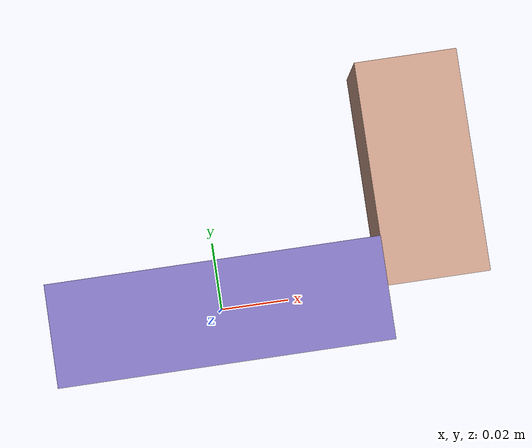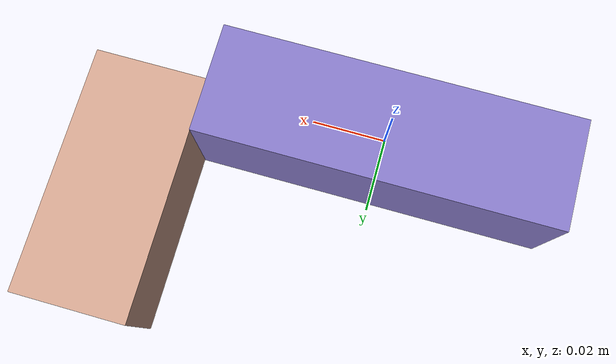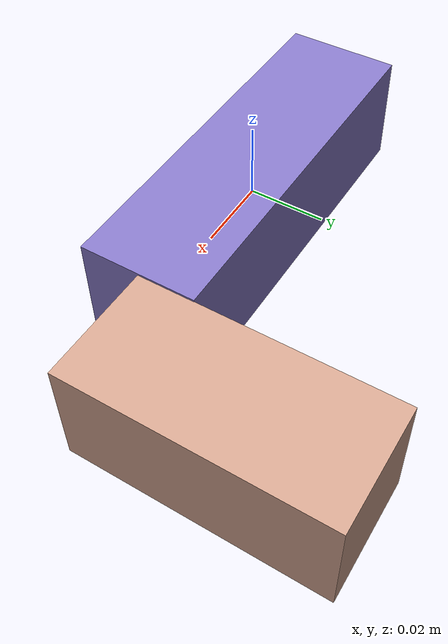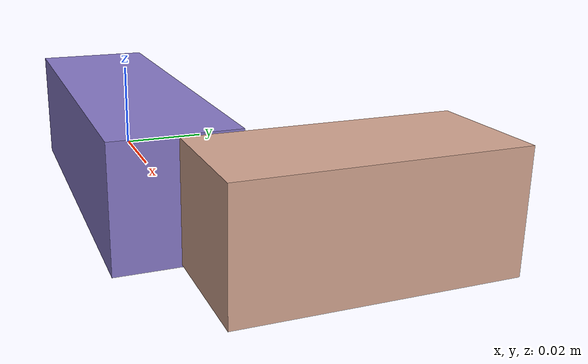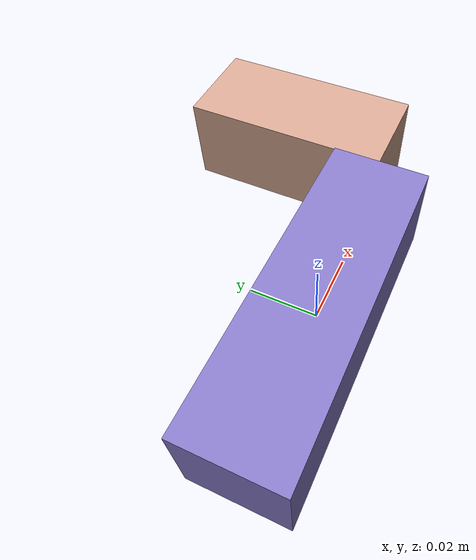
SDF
<sdf version="1.4"><world name="default"><model name="object0"><link name="link1"><pose>0 0 0 0 0 0</pose><inertial><pose>0 0 0 0 0 0</pose><mass>0.052894186150312945</mass><inertia><ixx>7.93412792254694e-06</ixx><ixy>0</ixy><iyy>4.62587551360248e-05</iyy><ixz>0</ixz><iyz>0</iyz><izz>4.62587551360248e-05</izz></inertia></inertial><visual name="link1_visual"><pose>0 0  0 0 0 0</pose><geometry><box><size>0.09795219657465361 0.03 0.03</size></box></geometry><material><diffuse>0.5258419144771823 0.47452211361699426 0.7783338330394599 1</diffuse></material></visual><collision><pose>0 0  0 0 0 0</pose><geometry><box><size>0.09795219657465361 0.03 0.03</size></box></geometry></collision></link><link name="link2"><pose>0.06389381709947023 0.03308147070668646 0 0 0 0</pose><inertial><pose>0 0 0 0 0 0</pose><mass>0.03519974588952756</mass><inertia><ixx>1.4930696802344912e-05</ixx><ixy>0</ixy><iyy>5.1068964661389565e-06</iyy><ixz>0</ixz><iyz>0</iyz><izz>1.510376221963509e-05</izz></inertia></inertial><visual name="link2_visual"><pose>0 0  0 0 0 0</pose><geometry><box><size>0.03 0.06518471461023623 0.028999999999999998</size></box></geometry><material><diffuse>0.8268800711719131 0.6457711283499752 0.5655427560675814 1</diffuse></material></visual><collision><pose>0 0  0 0 0 0</pose><geometry><box><size>0.03 0.06518471461023623 0.028999999999999998</size></box></geometry></collision></link><joint name="link_joint_0" type="fixed"><parent>link1</parent><child>link2</child><pose>0 0 0 0 0 0</pose><axis><xyz>0 0 1</xyz></axis></joint></model></world></sdf>
